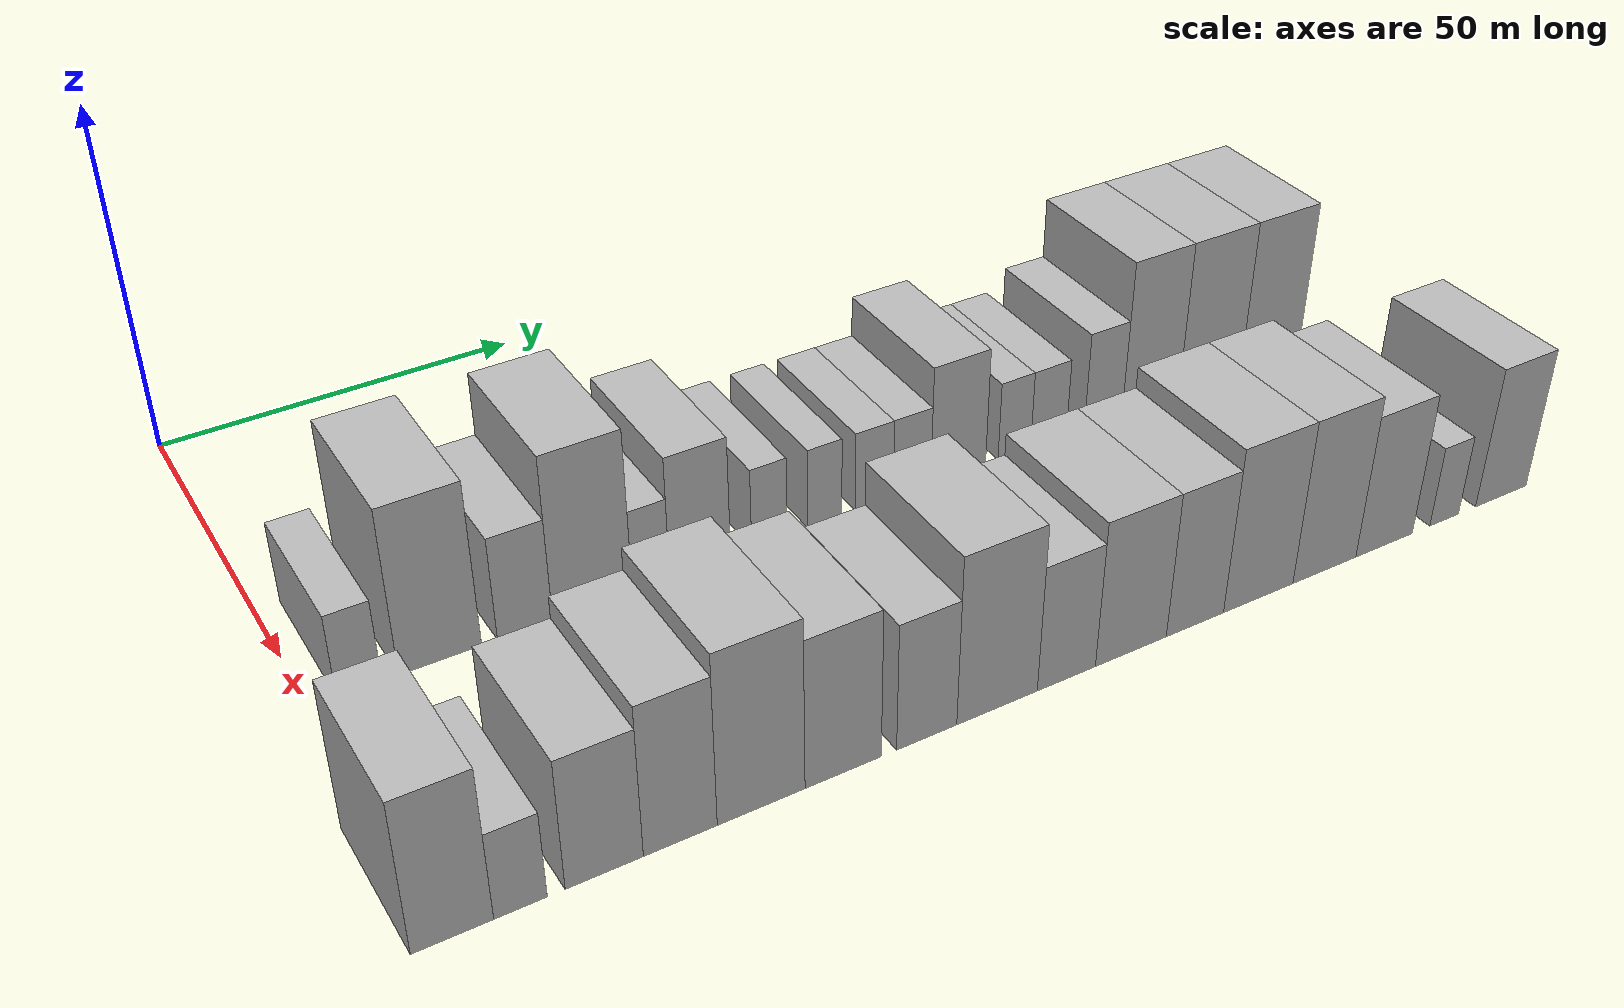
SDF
<sdf version="1.6">
 <world name="default">
  <model name="building_34">
   <static>1</static>
   <pose>50.0000 5.9958 0 0.000000 0.000000 0.000000</pose>
   <link name="link">
    <pose>0 0 6.00 0 0 0</pose>
    <collision name="collision"><geometry><box><size>20.0000 5.4830 12.0000</size></box></geometry></collision>
    <visual name="visual">
     <cast_shadows>0</cast_shadows>
     <geometry><box><size>20.0000 5.4830 12.0000</size></box></geometry>
     <material>
      <script>
       <uri>model://HANNAS_wall/materials/scripts</uri>
       <uri>model://HANNAS_wall/materials/textures</uri>
       <name>vrc/HANNAS_wall</name>
      </script>
     </material>
    </visual>
   </link>
  </model>
  <model name="building_35">
   <static>1</static>
   <pose>50.0000 15.9093 0 0.000000 0.000000 0.000000</pose>
   <link name="link">
    <pose>0 0 12.00 0 0 0</pose>
    <collision name="collision"><geometry><box><size>20.0000 10.3439 24.0000</size></box></geometry></collision>
    <visual name="visual">
     <cast_shadows>0</cast_shadows>
     <geometry><box><size>20.0000 10.3439 24.0000</size></box></geometry>
     <material>
      <script>
       <uri>model://HANNAS_wall/materials/scripts</uri>
       <uri>model://HANNAS_wall/materials/textures</uri>
       <name>vrc/HANNAS_wall</name>
      </script>
     </material>
    </visual>
   </link>
  </model>
  <model name="building_36">
   <static>1</static>
   <pose>50.0000 26.6475 0 0.000000 0.000000 0.000000</pose>
   <link name="link">
    <pose>0 0 7.50 0 0 0</pose>
    <collision name="collision"><geometry><box><size>20.0000 7.1325 15.0000</size></box></geometry></collision>
    <visual name="visual">
     <cast_shadows>0</cast_shadows>
     <geometry><box><size>20.0000 7.1325 15.0000</size></box></geometry>
     <material>
      <script>
       <uri>model://HANNAS_wall/materials/scripts</uri>
       <uri>model://HANNAS_wall/materials/textures</uri>
       <name>vrc/HANNAS_wall</name>
      </script>
     </material>
    </visual>
   </link>
  </model>
  <model name="building_37">
   <static>1</static>
   <pose>50.0000 35.5171 0 0.000000 0.000000 0.000000</pose>
   <link name="link">
    <pose>0 0 12.00 0 0 0</pose>
    <collision name="collision"><geometry><box><size>20.0000 10.6068 24.0000</size></box></geometry></collision>
    <visual name="visual">
     <cast_shadows>0</cast_shadows>
     <geometry><box><size>20.0000 10.6068 24.0000</size></box></geometry>
     <material>
      <script>
       <uri>model://HANNAS_wall/materials/scripts</uri>
       <uri>model://HANNAS_wall/materials/textures</uri>
       <name>vrc/HANNAS_wall</name>
      </script>
     </material>
    </visual>
   </link>
  </model>
  <model name="building_38">
   <static>1</static>
   <pose>50.0000 43.3631 0 0.000000 0.000000 0.000000</pose>
   <link name="link">
    <pose>0 0 6.00 0 0 0</pose>
    <collision name="collision"><geometry><box><size>20.0000 5.0853 12.0000</size></box></geometry></collision>
    <visual name="visual">
     <cast_shadows>0</cast_shadows>
     <geometry><box><size>20.0000 5.0853 12.0000</size></box></geometry>
     <material>
      <script>
       <uri>model://HANNAS_wall/materials/scripts</uri>
       <uri>model://HANNAS_wall/materials/textures</uri>
       <name>vrc/HANNAS_wall</name>
      </script>
     </material>
    </visual>
   </link>
  </model>
  <model name="building_39">
   <static>1</static>
   <pose>50.0000 50.1533 0 0.000000 0.000000 0.000000</pose>
   <link name="link">
    <pose>0 0 9.00 0 0 0</pose>
    <collision name="collision"><geometry><box><size>20.0000 8.4950 18.0000</size></box></geometry></collision>
    <visual name="visual">
     <cast_shadows>0</cast_shadows>
     <geometry><box><size>20.0000 8.4950 18.0000</size></box></geometry>
     <material>
      <script>
       <uri>model://HANNAS_wall/materials/scripts</uri>
       <uri>model://HANNAS_wall/materials/textures</uri>
       <name>vrc/HANNAS_wall</name>
      </script>
     </material>
    </visual>
   </link>
  </model>
  <model name="building_40">
   <static>1</static>
   <pose>50.0000 59.9617 0 0.000000 0.000000 0.000000</pose>
   <link name="link">
    <pose>0 0 6.00 0 0 0</pose>
    <collision name="collision"><geometry><box><size>20.0000 5.1219 12.0000</size></box></geometry></collision>
    <visual name="visual">
     <cast_shadows>0</cast_shadows>
     <geometry><box><size>20.0000 5.1219 12.0000</size></box></geometry>
     <material>
      <script>
       <uri>model://HANNAS_wall/materials/scripts</uri>
       <uri>model://HANNAS_wall/materials/textures</uri>
       <name>vrc/HANNAS_wall</name>
      </script>
     </material>
    </visual>
   </link>
  </model>
  <model name="building_41">
   <static>1</static>
   <pose>50.0000 68.0322 0 0.000000 0.000000 0.000000</pose>
   <link name="link">
    <pose>0 0 6.00 0 0 0</pose>
    <collision name="collision"><geometry><box><size>20.0000 5.0191 12.0000</size></box></geometry></collision>
    <visual name="visual">
     <cast_shadows>0</cast_shadows>
     <geometry><box><size>20.0000 5.0191 12.0000</size></box></geometry>
     <material>
      <script>
       <uri>model://HANNAS_wall/materials/scripts</uri>
       <uri>model://HANNAS_wall/materials/textures</uri>
       <name>vrc/HANNAS_wall</name>
      </script>
     </material>
    </visual>
   </link>
  </model>
  <model name="building_42">
   <static>1</static>
   <pose>50.0000 75.4131 0 0.000000 0.000000 0.000000</pose>
   <link name="link">
    <pose>0 0 6.00 0 0 0</pose>
    <collision name="collision"><geometry><box><size>20.0000 5.7426 12.0000</size></box></geometry></collision>
    <visual name="visual">
     <cast_shadows>0</cast_shadows>
     <geometry><box><size>20.0000 5.7426 12.0000</size></box></geometry>
     <material>
      <script>
       <uri>model://HANNAS_wall/materials/scripts</uri>
       <uri>model://HANNAS_wall/materials/textures</uri>
       <name>vrc/HANNAS_wall</name>
      </script>
     </material>
    </visual>
   </link>
  </model>
  <model name="building_43">
   <static>1</static>
   <pose>50.0000 81.1697 0 0.000000 0.000000 0.000000</pose>
   <link name="link">
    <pose>0 0 6.00 0 0 0</pose>
    <collision name="collision"><geometry><box><size>20.0000 5.7707 12.0000</size></box></geometry></collision>
    <visual name="visual">
     <cast_shadows>0</cast_shadows>
     <geometry><box><size>20.0000 5.7707 12.0000</size></box></geometry>
     <material>
      <script>
       <uri>model://HANNAS_wall/materials/scripts</uri>
       <uri>model://HANNAS_wall/materials/textures</uri>
       <name>vrc/HANNAS_wall</name>
      </script>
     </material>
    </visual>
   </link>
  </model>
  <model name="building_44">
   <static>1</static>
   <pose>50.0000 88.3704 0 0.000000 0.000000 0.000000</pose>
   <link name="link">
    <pose>0 0 9.00 0 0 0</pose>
    <collision name="collision"><geometry><box><size>20.0000 8.6306 18.0000</size></box></geometry></collision>
    <visual name="visual">
     <cast_shadows>0</cast_shadows>
     <geometry><box><size>20.0000 8.6306 18.0000</size></box></geometry>
     <material>
      <script>
       <uri>model://HANNAS_wall/materials/scripts</uri>
       <uri>model://HANNAS_wall/materials/textures</uri>
       <name>vrc/HANNAS_wall</name>
      </script>
     </material>
    </visual>
   </link>
  </model>
  <model name="building_45">
   <static>1</static>
   <pose>50.0000 97.3139 0 0.000000 0.000000 0.000000</pose>
   <link name="link">
    <pose>0 0 6.00 0 0 0</pose>
    <collision name="collision"><geometry><box><size>20.0000 5.2565 12.0000</size></box></geometry></collision>
    <visual name="visual">
     <cast_shadows>0</cast_shadows>
     <geometry><box><size>20.0000 5.2565 12.0000</size></box></geometry>
     <material>
      <script>
       <uri>model://HANNAS_wall/materials/scripts</uri>
       <uri>model://HANNAS_wall/materials/textures</uri>
       <name>vrc/HANNAS_wall</name>
      </script>
     </material>
    </visual>
   </link>
  </model>
  <model name="building_46">
   <static>1</static>
   <pose>50.0000 102.8810 0 0.000000 0.000000 0.000000</pose>
   <link name="link">
    <pose>0 0 6.00 0 0 0</pose>
    <collision name="collision"><geometry><box><size>20.0000 5.8777 12.0000</size></box></geometry></collision>
    <visual name="visual">
     <cast_shadows>0</cast_shadows>
     <geometry><box><size>20.0000 5.8777 12.0000</size></box></geometry>
     <material>
      <script>
       <uri>model://HANNAS_wall/materials/scripts</uri>
       <uri>model://HANNAS_wall/materials/textures</uri>
       <name>vrc/HANNAS_wall</name>
      </script>
     </material>
    </visual>
   </link>
  </model>
  <model name="building_47">
   <static>1</static>
   <pose>50.0000 112.0094 0 0.000000 0.000000 0.000000</pose>
   <link name="link">
    <pose>0 0 7.50 0 0 0</pose>
    <collision name="collision"><geometry><box><size>20.0000 6.3789 15.0000</size></box></geometry></collision>
    <visual name="visual">
     <cast_shadows>0</cast_shadows>
     <geometry><box><size>20.0000 6.3789 15.0000</size></box></geometry>
     <material>
      <script>
       <uri>model://HANNAS_wall/materials/scripts</uri>
       <uri>model://HANNAS_wall/materials/textures</uri>
       <name>vrc/HANNAS_wall</name>
      </script>
     </material>
    </visual>
   </link>
  </model>
  <model name="building_48">
   <static>1</static>
   <pose>50.0000 120.1160 0 0.000000 0.000000 0.000000</pose>
   <link name="link">
    <pose>0 0 12.00 0 0 0</pose>
    <collision name="collision"><geometry><box><size>20.0000 9.8343 24.0000</size></box></geometry></collision>
    <visual name="visual">
     <cast_shadows>0</cast_shadows>
     <geometry><box><size>20.0000 9.8343 24.0000</size></box></geometry>
     <material>
      <script>
       <uri>model://HANNAS_wall/materials/scripts</uri>
       <uri>model://HANNAS_wall/materials/textures</uri>
       <name>vrc/HANNAS_wall</name>
      </script>
     </material>
    </visual>
   </link>
  </model>
  <model name="building_49">
   <static>1</static>
   <pose>50.0000 130.5367 0 0.000000 0.000000 0.000000</pose>
   <link name="link">
    <pose>0 0 12.00 0 0 0</pose>
    <collision name="collision"><geometry><box><size>20.0000 11.0071 24.0000</size></box></geometry></collision>
    <visual name="visual">
     <cast_shadows>0</cast_shadows>
     <geometry><box><size>20.0000 11.0071 24.0000</size></box></geometry>
     <material>
      <script>
       <uri>model://HANNAS_wall/materials/scripts</uri>
       <uri>model://HANNAS_wall/materials/textures</uri>
       <name>vrc/HANNAS_wall</name>
      </script>
     </material>
    </visual>
   </link>
  </model>
  <model name="building_50">
   <static>1</static>
   <pose>50.0000 141.3571 0 0.000000 0.000000 0.000000</pose>
   <link name="link">
    <pose>0 0 12.00 0 0 0</pose>
    <collision name="collision"><geometry><box><size>20.0000 10.6338 24.0000</size></box></geometry></collision>
    <visual name="visual">
     <cast_shadows>0</cast_shadows>
     <geometry><box><size>20.0000 10.6338 24.0000</size></box></geometry>
     <material>
      <script>
       <uri>model://HANNAS_wall/materials/scripts</uri>
       <uri>model://HANNAS_wall/materials/textures</uri>
       <name>vrc/HANNAS_wall</name>
      </script>
     </material>
    </visual>
   </link>
  </model>
  <model name="building_100">
   <static>1</static>
   <pose>90.0000 1.0912 0 0.000000 0.000000 0.000000</pose>
   <link name="link">
    <pose>0 0 10.50 0 0 0</pose>
    <collision name="collision"><geometry><box><size>20.0000 8.9343 21.0000</size></box></geometry></collision>
    <visual name="visual">
     <cast_shadows>0</cast_shadows>
     <geometry><box><size>20.0000 8.9343 21.0000</size></box></geometry>
     <material>
      <script>
       <uri>model://HANNAS_wall/materials/scripts</uri>
       <uri>model://HANNAS_wall/materials/textures</uri>
       <name>vrc/HANNAS_wall</name>
      </script>
     </material>
    </visual>
   </link>
  </model>
  <model name="building_101">
   <static>1</static>
   <pose>90.0000 8.5105 0 0.000000 0.000000 0.000000</pose>
   <link name="link">
    <pose>0 0 6.00 0 0 0</pose>
    <collision name="collision"><geometry><box><size>20.0000 5.9044 12.0000</size></box></geometry></collision>
    <visual name="visual">
     <cast_shadows>0</cast_shadows>
     <geometry><box><size>20.0000 5.9044 12.0000</size></box></geometry>
     <material>
      <script>
       <uri>model://HANNAS_wall/materials/scripts</uri>
       <uri>model://HANNAS_wall/materials/textures</uri>
       <name>vrc/HANNAS_wall</name>
      </script>
     </material>
    </visual>
   </link>
  </model>
  <model name="building_102">
   <static>1</static>
   <pose>90.0000 17.9391 0 0.000000 0.000000 0.000000</pose>
   <link name="link">
    <pose>0 0 9.00 0 0 0</pose>
    <collision name="collision"><geometry><box><size>20.0000 8.9528 18.0000</size></box></geometry></collision>
    <visual name="visual">
     <cast_shadows>0</cast_shadows>
     <geometry><box><size>20.0000 8.9528 18.0000</size></box></geometry>
     <material>
      <script>
       <uri>model://HANNAS_wall/materials/scripts</uri>
       <uri>model://HANNAS_wall/materials/textures</uri>
       <name>vrc/HANNAS_wall</name>
      </script>
     </material>
    </visual>
   </link>
  </model>
  <model name="building_103">
   <static>1</static>
   <pose>90.0000 26.7860 0 0.000000 0.000000 0.000000</pose>
   <link name="link">
    <pose>0 0 10.50 0 0 0</pose>
    <collision name="collision"><geometry><box><size>20.0000 8.7411 21.0000</size></box></geometry></collision>
    <visual name="visual">
     <cast_shadows>0</cast_shadows>
     <geometry><box><size>20.0000 8.7411 21.0000</size></box></geometry>
     <material>
      <script>
       <uri>model://HANNAS_wall/materials/scripts</uri>
       <uri>model://HANNAS_wall/materials/textures</uri>
       <name>vrc/HANNAS_wall</name>
      </script>
     </material>
    </visual>
   </link>
  </model>
  <model name="building_104">
   <static>1</static>
   <pose>90.0000 36.5460 0 0.000000 0.000000 0.000000</pose>
   <link name="link">
    <pose>0 0 12.00 0 0 0</pose>
    <collision name="collision"><geometry><box><size>20.0000 10.7787 24.0000</size></box></geometry></collision>
    <visual name="visual">
     <cast_shadows>0</cast_shadows>
     <geometry><box><size>20.0000 10.7787 24.0000</size></box></geometry>
     <material>
      <script>
       <uri>model://HANNAS_wall/materials/scripts</uri>
       <uri>model://HANNAS_wall/materials/textures</uri>
       <name>vrc/HANNAS_wall</name>
      </script>
     </material>
    </visual>
   </link>
  </model>
  <model name="building_105">
   <static>1</static>
   <pose>90.0000 46.7954 0 0.000000 0.000000 0.000000</pose>
   <link name="link">
    <pose>0 0 10.50 0 0 0</pose>
    <collision name="collision"><geometry><box><size>20.0000 9.7201 21.0000</size></box></geometry></collision>
    <visual name="visual">
     <cast_shadows>0</cast_shadows>
     <geometry><box><size>20.0000 9.7201 21.0000</size></box></geometry>
     <material>
      <script>
       <uri>model://HANNAS_wall/materials/scripts</uri>
       <uri>model://HANNAS_wall/materials/textures</uri>
       <name>vrc/HANNAS_wall</name>
      </script>
     </material>
    </visual>
   </link>
  </model>
  <model name="building_106">
   <static>1</static>
   <pose>90.0000 57.6482 0 0.000000 0.000000 0.000000</pose>
   <link name="link">
    <pose>0 0 9.00 0 0 0</pose>
    <collision name="collision"><geometry><box><size>20.0000 7.9857 18.0000</size></box></geometry></collision>
    <visual name="visual">
     <cast_shadows>0</cast_shadows>
     <geometry><box><size>20.0000 7.9857 18.0000</size></box></geometry>
     <material>
      <script>
       <uri>model://HANNAS_wall/materials/scripts</uri>
       <uri>model://HANNAS_wall/materials/textures</uri>
       <name>vrc/HANNAS_wall</name>
      </script>
     </material>
    </visual>
   </link>
  </model>
  <model name="building_107">
   <static>1</static>
   <pose>90.0000 67.1707 0 0.000000 0.000000 0.000000</pose>
   <link name="link">
    <pose>0 0 12.00 0 0 0</pose>
    <collision name="collision"><geometry><box><size>20.0000 11.0592 24.0000</size></box></geometry></collision>
    <visual name="visual">
     <cast_shadows>0</cast_shadows>
     <geometry><box><size>20.0000 11.0592 24.0000</size></box></geometry>
     <material>
      <script>
       <uri>model://HANNAS_wall/materials/scripts</uri>
       <uri>model://HANNAS_wall/materials/textures</uri>
       <name>vrc/HANNAS_wall</name>
      </script>
     </material>
    </visual>
   </link>
  </model>
  <model name="building_108">
   <static>1</static>
   <pose>90.0000 76.8298 0 0.000000 0.000000 0.000000</pose>
   <link name="link">
    <pose>0 0 9.00 0 0 0</pose>
    <collision name="collision"><geometry><box><size>20.0000 8.2589 18.0000</size></box></geometry></collision>
    <visual name="visual">
     <cast_shadows>0</cast_shadows>
     <geometry><box><size>20.0000 8.2589 18.0000</size></box></geometry>
     <material>
      <script>
       <uri>model://HANNAS_wall/materials/scripts</uri>
       <uri>model://HANNAS_wall/materials/textures</uri>
       <name>vrc/HANNAS_wall</name>
      </script>
     </material>
    </visual>
   </link>
  </model>
  <model name="building_109">
   <static>1</static>
   <pose>90.0000 86.1632 0 0.000000 0.000000 0.000000</pose>
   <link name="link">
    <pose>0 0 10.50 0 0 0</pose>
    <collision name="collision"><geometry><box><size>20.0000 10.4080 21.0000</size></box></geometry></collision>
    <visual name="visual">
     <cast_shadows>0</cast_shadows>
     <geometry><box><size>20.0000 10.4080 21.0000</size></box></geometry>
     <material>
      <script>
       <uri>model://HANNAS_wall/materials/scripts</uri>
       <uri>model://HANNAS_wall/materials/textures</uri>
       <name>vrc/HANNAS_wall</name>
      </script>
     </material>
    </visual>
   </link>
  </model>
  <model name="building_110">
   <static>1</static>
   <pose>90.0000 95.7052 0 0.000000 0.000000 0.000000</pose>
   <link name="link">
    <pose>0 0 10.50 0 0 0</pose>
    <collision name="collision"><geometry><box><size>20.0000 8.6760 21.0000</size></box></geometry></collision>
    <visual name="visual">
     <cast_shadows>0</cast_shadows>
     <geometry><box><size>20.0000 8.6760 21.0000</size></box></geometry>
     <material>
      <script>
       <uri>model://HANNAS_wall/materials/scripts</uri>
       <uri>model://HANNAS_wall/materials/textures</uri>
       <name>vrc/HANNAS_wall</name>
      </script>
     </material>
    </visual>
   </link>
  </model>
  <model name="building_111">
   <static>1</static>
   <pose>90.0000 105.4741 0 0.000000 0.000000 0.000000</pose>
   <link name="link">
    <pose>0 0 12.00 0 0 0</pose>
    <collision name="collision"><geometry><box><size>20.0000 10.8617 24.0000</size></box></geometry></collision>
    <visual name="visual">
     <cast_shadows>0</cast_shadows>
     <geometry><box><size>20.0000 10.8617 24.0000</size></box></geometry>
     <material>
      <script>
       <uri>model://HANNAS_wall/materials/scripts</uri>
       <uri>model://HANNAS_wall/materials/textures</uri>
       <name>vrc/HANNAS_wall</name>
      </script>
     </material>
    </visual>
   </link>
  </model>
  <model name="building_112">
   <static>1</static>
   <pose>90.0000 116.0174 0 0.000000 0.000000 0.000000</pose>
   <link name="link">
    <pose>0 0 12.00 0 0 0</pose>
    <collision name="collision"><geometry><box><size>20.0000 10.2247 24.0000</size></box></geometry></collision>
    <visual name="visual">
     <cast_shadows>0</cast_shadows>
     <geometry><box><size>20.0000 10.2247 24.0000</size></box></geometry>
     <material>
      <script>
       <uri>model://HANNAS_wall/materials/scripts</uri>
       <uri>model://HANNAS_wall/materials/textures</uri>
       <name>vrc/HANNAS_wall</name>
      </script>
     </material>
    </visual>
   </link>
  </model>
  <model name="building_113">
   <static>1</static>
   <pose>90.0000 125.8609 0 0.000000 0.000000 0.000000</pose>
   <link name="link">
    <pose>0 0 10.50 0 0 0</pose>
    <collision name="collision"><geometry><box><size>20.0000 9.4623 21.0000</size></box></geometry></collision>
    <visual name="visual">
     <cast_shadows>0</cast_shadows>
     <geometry><box><size>20.0000 9.4623 21.0000</size></box></geometry>
     <material>
      <script>
       <uri>model://HANNAS_wall/materials/scripts</uri>
       <uri>model://HANNAS_wall/materials/textures</uri>
       <name>vrc/HANNAS_wall</name>
      </script>
     </material>
    </visual>
   </link>
  </model>
  <model name="building_114">
   <static>1</static>
   <pose>90.0000 136.0691 0 0.000000 0.000000 0.000000</pose>
   <link name="link">
    <pose>0 0 6.00 0 0 0</pose>
    <collision name="collision"><geometry><box><size>20.0000 4.9540 12.0000</size></box></geometry></collision>
    <visual name="visual">
     <cast_shadows>0</cast_shadows>
     <geometry><box><size>20.0000 4.9540 12.0000</size></box></geometry>
     <material>
      <script>
       <uri>model://HANNAS_wall/materials/scripts</uri>
       <uri>model://HANNAS_wall/materials/textures</uri>
       <name>vrc/HANNAS_wall</name>
      </script>
     </material>
    </visual>
   </link>
  </model>
  <model name="building_115">
   <static>1</static>
   <pose>90.0000 146.0390 0 0.000000 0.000000 0.000000</pose>
   <link name="link">
    <pose>0 0 10.50 0 0 0</pose>
    <collision name="collision"><geometry><box><size>20.0000 8.9858 21.0000</size></box></geometry></collision>
    <visual name="visual">
     <cast_shadows>0</cast_shadows>
     <geometry><box><size>20.0000 8.9858 21.0000</size></box></geometry>
     <material>
      <script>
       <uri>model://HANNAS_wall/materials/scripts</uri>
       <uri>model://HANNAS_wall/materials/textures</uri>
       <name>vrc/HANNAS_wall</name>
      </script>
     </material>
    </visual>
   </link>
  </model>
 </world>
</sdf>
